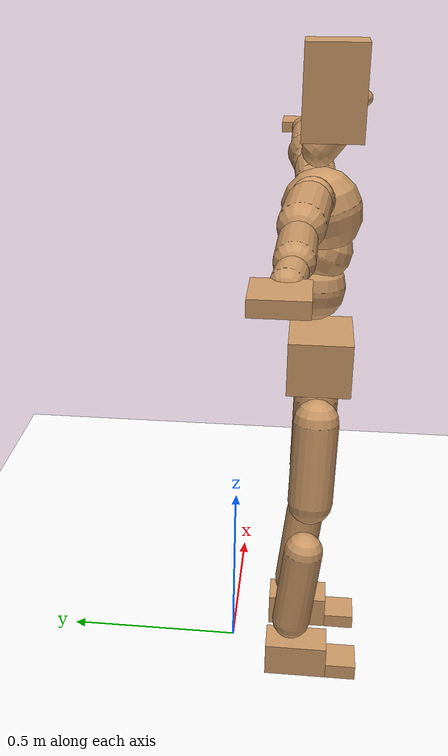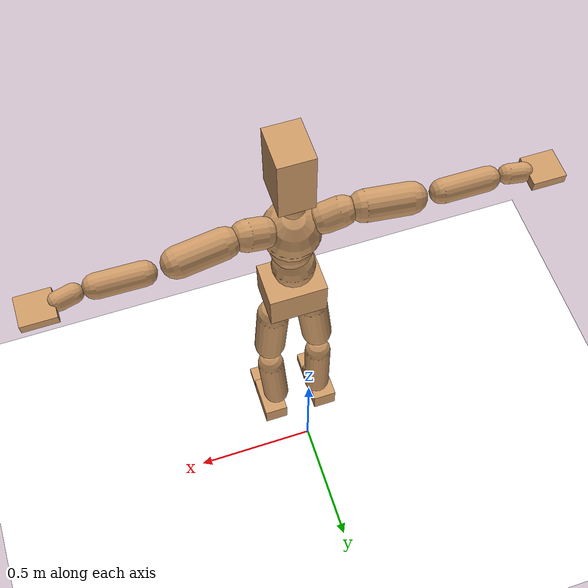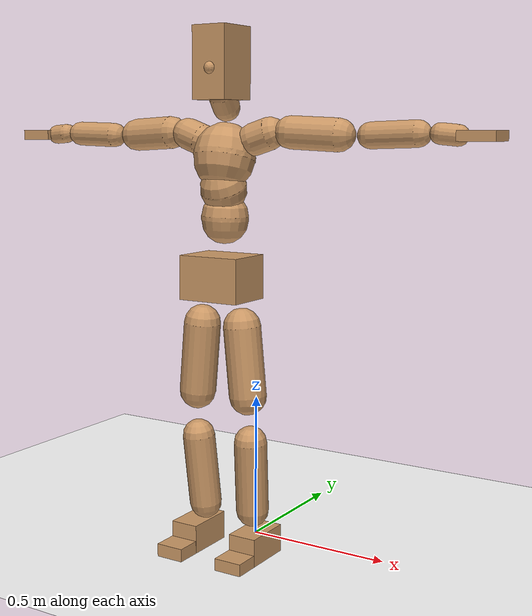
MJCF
<mujoco model="humanoid">
  <option integrator="implicitfast" />

  <visual>
    <global offwidth="1280" offheight="960" />
    <headlight active="1" ambient="0.34 0.34 0.34" diffuse="0.5 0.5 0.5" />
  </visual>

  <default>
    <joint damping="2" stiffness="2" armature="0.01" limited="true" solimplimit="0 .99 .01" />
    <geom condim="1" friction="0.7 0.005 0.0001" solimp=".99 .99 .003" solref="0.015 1" margin="0.001" rgba="0.8 0.6 .4 1" />
    <default class="smplcontact">
      <geom condim="3" friction="1. 0.005 0.0001" solref="0.015 1" solimp="0.98 0.98 0.001" priority="1" />
    </default>
    <default class="stiff_medium">
      <joint stiffness="10" />
    </default>
    <default class="stiff_medium_higher">
      <joint stiffness="50" />
    </default>
    <default class="stiff_high">
      <joint stiffness="100" />
    </default>
  </default>

  <asset>
    <texture type="skybox" builtin="gradient" rgb1="0.99 0.99 0.99" rgb2="0.608 0.828 0.892" width="100" />
    <texture builtin="flat" height="1278" mark="cross" markrgb="1 1 1" name="texgeom" random="0.01" rgb1="0.8 0.6 0.4" rgb2="0.8 0.6 0.4" type="cube" width="127" />
    <texture name="texplane" type="2d" builtin="checker" markrgb="1 1 1" rgb1="0.756 0.772 0.76" rgb2="0.6 0.6 0.6" width="100" height="100" />
    <material name="MatPlane" reflectance="0.5" texture="texplane" texrepeat="1 1" texuniform="true" />
    <material name="geom" texture="texgeom" texuniform="true" />
  </asset>

  <worldbody>
    <light name="tracking_light" pos="0 0 7" dir="0 0 -1" directional="true" cutoff="100" exponent="1" diffuse="1 1 1" specular="0.1 0.1 0.1" mode="trackcom" />
    <camera name="back" pos="0 3 2.4" xyaxes="-1 0 0 0 -1 2" mode="trackcom" />
    <camera name="side" pos="-3 0 2.4" xyaxes="0 -1 0 1 0 2" mode="trackcom" />
    <camera name="front_side" pos="-2.8 -2.8 0.8" xyaxes="0.5 -0.5 0 0.1 0.1 1" mode="trackcom" />
    <geom condim="3" name="floor" pos="0 0 0" rgba="1 1 1 1" size="100 100 .2" type="plane" material="MatPlane" />
    <body name="Pelvis" pos="-0.0018 -0.2233 0.965657" euler="90 0 0">
      <site name="Pelvis" size="0.01" />
      <freejoint name="Pelvis" />
      <geom type="box" pos="-0.0000 -0.0121 -0.0055" size="0.10891 0.0735574 0.0845604" quat="1.0000 0.0000 0.0000 0.0000" density="3165.830099" name="Pelvis" />
      <body name="L_Hip" pos="0.0716684 -0.0942517 -0.00701216">
        <joint name="L_Hip_x" type="hinge" pos="0 0 0" axis="1 0 0" stiffness="10.993550918367347" range="-160.0 22.92" class="stiff_medium" damping="16.731264559201378" armature="0.011317148706491573"/>
        <joint name="L_Hip_y" type="hinge" pos="0 0 0" axis="0 1 0" stiffness="10.989952142857145" range="-70.0 70.0" class="stiff_medium" damping="11.076255150268974" armature="0.011163235886663743"/>
        <joint name="L_Hip_z" type="hinge" pos="0 0 0" axis="0 0 1" stiffness="10.99057081632653" range="-28.65 90.0" class="stiff_medium" damping="11.152776792879617" armature="0.011317376710499935"/>
        <geom type="capsule" density="2040.816327" fromto="0.00711528 -0.07734 -0.00092808 0.0282549 -0.309566 -0.00371232" size="0.0626562" name="L_Hip" />
        <body name="L_Knee" pos="0.0353702 -0.386906 -0.0046404">
          <joint name="L_Knee_x" type="hinge" pos="0 0 0" axis="1 0 0" range="-5.16 171.89" damping="8.90667826329039" armature="0.011290255274647106" stiffness="2.1957242040816327"/>
          <joint name="L_Knee_y" type="hinge" pos="0 0 0" axis="0 1 0" range="-4.58 6.88" damping="8.849587285307368" armature="0.01113682203229276" stiffness="2.197529816326531"/>
          <joint name="L_Knee_z" type="hinge" pos="0 0 0" axis="0 0 1" range="-6.88 4.58" damping="8.904685345004342" armature="0.011291358815530995" stiffness="2.1945272040816324"/>
          <geom type="capsule" density="1234.567901" fromto="-0.00278424 -0.0820835 -0.00897144 -0.0112401 -0.328334 -0.036092" size="0.0551171" name="L_Knee" />
          <body name="L_Ankle" pos="-0.0140243 -0.410418 -0.0450634">
            <joint name="L_Ankle_x" type="hinge" pos="0 0 0" axis="1 0 0" range="-45.84 45.84" class="stiff_medium" damping="6.616797115848325" armature="0.01115280257513816" stiffness="10.90458448979592"/>
            <joint name="L_Ankle_y" type="hinge" pos="0 0 0" axis="0 1 0" range="-74.48 22.92" class="stiff_medium" damping="3.3074226818225547" armature="0.011146223241716394" stiffness="10.90458530612245"/>
            <joint name="L_Ankle_z" type="hinge" pos="0 0 0" axis="0 0 1" range="-4.58 4.58" class="stiff_medium" damping="6.602056219394647" armature="0.011103163332494908" stiffness="10.90458663265306"/>
            <geom type="box" pos="0.024027 -0.0246457 0.024955" size="0.049208 0.0472723 0.086598" quat="1.0000 0.0000 0.0000 0.0000" density="449.071558" name="L_Ankle" class="smplcontact" />
            <body name="L_Toe" pos="0.0272237 -0.057541 0.123022">
              <joint name="L_Toe_x" type="hinge" pos="0 0 0" axis="1 0 0" range="-91.67 22.92" armature="0.011078207038047102" damping="2.1982116054132375" stiffness="2.1809189183673467"/>
              <joint name="L_Toe_y" type="hinge" pos="0 0 0" axis="0 1 0" range="-4.58 4.58" armature="0.01104801091343472" damping="2.1952136722893223" stiffness="2.180918857142857"/>
              <joint name="L_Toe_z" type="hinge" pos="0 0 0" axis="0 0 1" range="-4.58 4.58" armature="0.010986963041743661" damping="2.1891403084332692" stiffness="2.1809190000000003"/>
              <geom type="box" pos="-0.0030936 0.0056716 0.0255738" size="0.0486986 0.020376 0.0505325" quat="1.0000 0.0000 0.0000 0.0000" density="423.206892" name="L_Toe" class="smplcontact" />
            </body>
          </body>
        </body>
      </body>
      <body name="R_Hip" pos="-0.0698122 -0.0933236 -0.00443416">
        <joint name="R_Hip_x" type="hinge" pos="0 0 0" axis="1 0 0" stiffness="10.993550918367347" range="-160.0 22.92" class="stiff_medium" damping="16.731264559201378" armature="0.011317148706491573"/>
        <joint name="R_Hip_y" type="hinge" pos="0 0 0" axis="0 1 0" stiffness="10.989952142857145" range="-70.0 70.0" class="stiff_medium" damping="11.076255150268974" armature="0.011163235886663743"/>
        <joint name="R_Hip_z" type="hinge" pos="0 0 0" axis="0 0 1" stiffness="10.99057081632653" range="-90.0 28.65" class="stiff_medium" damping="11.152776792879617" armature="0.011317376710499935"/>
        <geom type="capsule" density="2040.816327" fromto="-0.00794024 -0.0788868 -0.00185616 -0.0315547 -0.31565 -0.00732152" size="0.0617393" name="R_Hip" />
        <body name="R_Knee" pos="-0.039495 -0.394537 -0.00917768">
          <joint name="R_Knee_x" type="hinge" pos="0 0 0" axis="1 0 0" range="-5.16 171.89" damping="8.90667826329039" armature="0.011290255274647106" stiffness="2.1957242040816327"/>
          <joint name="R_Knee_y" type="hinge" pos="0 0 0" axis="0 1 0" range="-6.88 4.58" damping="8.849587285307368" armature="0.01113682203229276" stiffness="2.197529816326531"/>
          <joint name="R_Knee_z" type="hinge" pos="0 0 0" axis="0 0 1" range="-4.58 6.88" damping="8.904685345004342" armature="0.011291358815530995" stiffness="2.1945272040816324"/>
          <geom type="capsule" density="1234.567901" fromto="0.00329984 -0.0821866 -0.0087652 0.0129931 -0.328643 -0.0348546" size="0.0551171" name="R_Knee" />
          <body name="R_Ankle" pos="0.016293 -0.41083 -0.0436198">
            <joint name="R_Ankle_x" type="hinge" pos="0 0 0" axis="1 0 0" range="-45.84 45.84" class="stiff_medium" damping="6.616797115848325" armature="0.01115280257513816" stiffness="10.90458448979592"/>
            <joint name="R_Ankle_y" type="hinge" pos="0 0 0" axis="0 1 0" range="-22.92 74.48" class="stiff_medium" damping="3.3074226818225547" armature="0.011146223241716394" stiffness="10.90458530612245"/>
            <joint name="R_Ankle_z" type="hinge" pos="0 0 0" axis="0 0 1" range="-4.58 4.58" class="stiff_medium" damping="6.602056219394647" armature="0.011103163332494908" stiffness="10.90458663265306"/>
            <geom type="box" pos="-0.0218614 -0.0179429 0.0263987" size="0.049208 0.0486986 0.0881262" quat="1.0000 0.0000 0.0000 0.0000" density="434.700981" name="R_Ankle" class="smplcontact" />
            <body name="R_Toe" pos="-0.0261925 -0.0496007 0.127147">
              <joint name="R_Toe_x" type="hinge" pos="0 0 0" axis="1 0 0" range="-91.67 22.92" armature="0.011078207038047102" damping="2.1982116054132375" stiffness="2.1809189183673467"/>
              <joint name="R_Toe_y" type="hinge" pos="0 0 0" axis="0 1 0" range="-4.58 4.58" armature="0.01104801091343472" damping="2.1952136722893223" stiffness="2.180918857142857"/>
              <joint name="R_Toe_z" type="hinge" pos="0 0 0" axis="0 0 1" range="-4.58 4.58" armature="0.010986963041743661" damping="2.1891403084332692" stiffness="2.1809190000000003"/>
              <geom type="box" pos="0.00433104 0.0046404 0.0234082" size="0.0488005 0.0220061 0.0502268" quat="1.0000 0.0000 0.0000 0.0000" density="407.384095" name="R_Toe" class="smplcontact" />
            </body>
          </body>
        </body>
      </body>
      <body name="Torso" pos="-0.0025625 0.111725 -0.0273675">
        <joint name="Torso_x" type="hinge" pos="0 0 0" axis="1 0 0" range="-25.78 57.3" class="stiff_medium" damping="16.278215827060983" armature="0.010943125417596108" stiffness="10.761918775510203"/>
        <joint name="Torso_y" type="hinge" pos="0 0 0" axis="0 1 0" range="-57.3 57.3" class="stiff_high" damping="22.02121015947141" armature="0.011300827383838356" stiffness="107.2783612244898"/>
        <joint name="Torso_z" type="hinge" pos="0 0 0" axis="0 0 1" range="-34.38 34.38" class="stiff_high" damping="21.818539008926294" armature="0.011066688010096793" stiffness="107.54090204081632"/>
        <geom type="capsule" density="2040.816327" fromto="0.0025625 0.06232 0.0005125 0.003075 0.0761575 0.000615" size="0.0783457" name="Torso" />
        <body name="Spine" pos="0.0056375 0.13858 0.0011275">
          <joint name="Spine_x" type="hinge" pos="0 0 0" axis="1 0 0" stiffness="10.731124489795917" range="-25.78 57.3" class="stiff_medium" damping="16.183668144404077" armature="0.01084741304944829"/>
          <joint name="Spine_y" type="hinge" pos="0 0 0" axis="0 1 0" stiffness="10.724918571428573" range="-57.3 57.3" class="stiff_high" damping="8.808162633990195" armature="0.011303076637323198"/>
          <joint name="Spine_z" type="hinge" pos="0 0 0" axis="0 0 1" stiffness="21.42405020408163" range="-34.38 34.38" class="stiff_high" damping="13.084975661917804" armature="0.01109971338298697"/>
          <geom type="capsule" density="2040.816327" fromto="0.0007175 0.024395 0.011685 0.00082 0.0298275 0.01435" size="0.0769194" name="Spine" />
          <body name="Chest" pos="0.0015375 0.0542225 0.026035">
            <joint name="Chest_x" type="hinge" pos="0 0 0" axis="1 0 0" stiffness="10.68732857142857" range="-25.78 57.3" class="stiff_medium" damping="16.11278688942088" armature="0.010796665503189752"/>
            <joint name="Chest_y" type="hinge" pos="0 0 0" axis="0 1 0" stiffness="10.825288979591836" range="-57.3 57.3" class="stiff_high" damping="8.850388460715017" armature="0.011305901402093407"/>
            <joint name="Chest_z" type="hinge" pos="0 0 0" axis="0 0 1" stiffness="21.361041224489796" range="-34.38 34.38" class="stiff_high" damping="13.079229390211289" armature="0.011122678876255423"/>
            <geom type="capsule" density="2040.816327" fromto="-0.0009225 0.069905 -0.0177325 -0.001025 0.0853825 -0.02173" size="0.102084" name="Chest" />
            <body name="Neck" pos="-0.00287 0.219247 -0.0439725">
              <joint name="Neck_x" type="hinge" pos="0 0 0" axis="1 0 0" range="-28.65 57.3" class="stiff_medium_higher" damping="10.315289110801874" armature="0.010330741129599164" stiffness="51.49930102040816"/>
              <joint name="Neck_y" type="hinge" pos="0 0 0" axis="0 1 0" range="-40.11 40.11" class="stiff_medium_higher" damping="10.324660076514744" armature="0.010358685591224338" stiffness="51.45373163265307"/>
              <joint name="Neck_z" type="hinge" pos="0 0 0" axis="0 0 1" range="-40.11 40.11" class="stiff_medium_higher" damping="10.300538698277425" armature="0.010328003493675061" stiffness="51.36573469387756"/>
              <geom type="capsule" density="1000" fromto="0.001025 0.013325 0.0105575 0.0042025 0.0533 0.0421275" size="0.0444197" name="Neck" />
              <body name="Head" pos="0.00523276 0.0654095 0.0516232">
                <joint name="Head_x" type="hinge" pos="0 0 0" axis="1 0 0" range="-28.65 57.3" class="stiff_medium_higher" damping="2.057329357817433" armature="0.010318997448358899" stiffness="51.27198775510203"/>
                <joint name="Head_y" type="hinge" pos="0 0 0" axis="0 1 0" range="-40.11 40.11" class="stiff_medium_higher" damping="2.0573298220906837" armature="0.010318999641284918" stiffness="51.272000000000006"/>
                <joint name="Head_z" type="hinge" pos="0 0 0" axis="0 0 1" range="-40.11 40.11" class="stiff_medium_higher" damping="2.057329210632063" armature="0.010318997820182077" stiffness="51.27197857142857"/>
                <geom type="box" pos="-0.00422646 0.0881519 -0.0116731" size="0.0609818 0.116127 0.0764788" quat="1.0000 0.0000 0.0000 0.0000" density="1018.069894" name="Head" />
                <geom type="capsule" name="nose" size="0.020126 0.010063" pos="0 0.070441 0.050315" quat="1 0 0 0" mass="0" contype="0" conaffinity="0" />
              </body>
            </body>
            <body name="L_Thorax" pos="0.0812586 0.125497 -0.0351639">
              <joint name="L_Thorax_x" type="hinge" pos="0 0 0" axis="1 0 0" range="-10.89 4.58" class="stiff_medium_higher" damping="22.188855806039314" armature="0.011204311941050583" stiffness="54.92810765306122"/>
              <joint name="L_Thorax_y" type="hinge" pos="0 0 0" axis="0 1 0" range="-28.65 17.19" class="stiff_medium_higher" damping="22.305669663419835" armature="0.011319198777422441" stiffness="54.94458010204082"/>
              <joint name="L_Thorax_z" type="hinge" pos="0 0 0" axis="0 0 1" range="-31.51 40.11" class="stiff_medium_higher" damping="22.305709031392187" armature="0.011319302638772793" stiffness="54.944269897959174"/>
              <geom type="capsule" density="1000" fromto="0.0187678 0.00629032 -0.00185616 0.0750714 0.0251613 -0.00732152" size="0.0530795" name="L_Thorax" />
              <body name="L_Shoulder" pos="0.0938392 0.0314516 -0.00917768">
                <joint name="L_Shoulder_x" type="hinge" pos="0 0 0" axis="1 0 0" range="-97.4 97.4" class="stiff_medium" damping="6.642757942537054" armature="0.011158913101374108" stiffness="10.984301836734694"/>
                <joint name="L_Shoulder_y" type="hinge" pos="0 0 0" axis="0 1 0" range="-108.86 80.21" class="stiff_medium" damping="6.690010858062949" armature="0.011314976806793926" stiffness="10.987464285714289"/>
                <joint name="L_Shoulder_z" type="hinge" pos="0 0 0" axis="0 0 1" range="-97.4 85.94" class="stiff_medium" damping="6.690073962291698" armature="0.01131511008837033" stiffness="10.987542142857142"/>
                <geom type="capsule" density="1000" fromto="0.0535193 -0.00268112 -0.0056716 0.21418 -0.0105182 -0.0226864" size="0.052672" name="L_Shoulder" />
                <body name="L_Elbow" pos="0.2677 -0.0131994 -0.028358">
                  <joint name="L_Elbow_x" type="hinge" pos="0 0 0" axis="1 0 0" range="-17.19 4.58" damping="5.515069369245004" armature="0.01108701022308291" stiffness="2.194711795918367"/>
                  <joint name="L_Elbow_y" type="hinge" pos="0 0 0" axis="0 1 0" range="-180.0 17.19" damping="5.566430002032" armature="0.011294444478738038" stiffness="2.194717448979592"/>
                  <joint name="L_Elbow_z" type="hinge" pos="0 0 0" axis="0 0 1" range="-100.84 4.58" damping="5.566511480786791" armature="0.011295143679978463" stiffness="2.194645836734694"/>
                  <geom type="capsule" density="1000" fromto="0.0513538 0.00185616 -0.00020624 0.205621 0.00742464 -0.00092808" size="0.0412614" name="L_Elbow" />
                  <body name="L_Wrist" pos="0.256975 0.0092808 -0.00123744">
                    <joint name="L_Wrist_x" type="hinge" pos="0 0 0" axis="1 0 0" range="-180.0 22.92" armature="0.011067318856878455" damping="2.1995450215581736" stiffness="2.1857137959183675"/>
                    <joint name="L_Wrist_y" type="hinge" pos="0 0 0" axis="0 1 0" range="-17.19 17.19" armature="0.01122589251960191" damping="2.215609302757899" stiffness="2.186429530612245"/>
                    <joint name="L_Wrist_z" type="hinge" pos="0 0 0" axis="0 0 1" range="-22.92 22.92" armature="0.01123470537279724" damping="2.2163609858961157" stiffness="2.186197081632653"/>
                    <geom type="capsule" density="1000" fromto="0.0173242 -0.00164992 -0.0030936 0.0692966 -0.0067028 -0.0123744" size="0.0323978" name="L_Wrist" class="smplcontact" />
                    <body name="L_Hand" pos="0.0866208 -0.00845584 -0.0153649">
                      <joint name="L_Hand_x" type="hinge" pos="0 0 0" axis="1 0 0" range="-17.19 17.19" armature="0.010987694677782324" damping="2.1892110450504445" stiffness="2.180914714285714"/>
                      <joint name="L_Hand_y" type="hinge" pos="0 0 0" axis="0 1 0" range="-51.57 51.57" armature="0.011117616171758193" damping="2.2021160880848343" stiffness="2.1809150408163265"/>
                      <joint name="L_Hand_z" type="hinge" pos="0 0 0" axis="0 0 1" range="-91.67 91.67" armature="0.011152246477934015" damping="2.2055430908247273" stiffness="2.1809149999999997"/>
                      <geom type="box" pos="0.0508382 0.0010312 -0.00598096" size="0.0595998 0.016097 0.0548114" quat="1.0000 0.0000 0.0000 0.0000" density="400.552564" name="L_Hand" class="smplcontact" />
                    </body>
                  </body>
                </body>
              </body>
            </body>
            <body name="R_Thorax" pos="-0.0843522 0.122507 -0.0398043">
              <joint name="R_Thorax_x" type="hinge" pos="0 0 0" axis="1 0 0" range="-10.89 4.58" class="stiff_medium_higher" damping="22.188855806039314" armature="0.011204311941050583" stiffness="54.92810765306122"/>
              <joint name="R_Thorax_y" type="hinge" pos="0 0 0" axis="0 1 0" range="-17.19 28.65" class="stiff_medium_higher" damping="22.305669663419835" armature="0.011319198777422441" stiffness="54.94458010204082"/>
              <joint name="R_Thorax_z" type="hinge" pos="0 0 0" axis="0 0 1" range="-40.11 31.51" class="stiff_medium_higher" damping="22.305709031392187" armature="0.011319302638772793" stiffness="54.944269897959174"/>
              <geom type="capsule" density="1000" fromto="-0.019799 0.0067028 -0.00185616 -0.0791962 0.0268112 -0.00752776" size="0.0520607" name="R_Thorax" />
              <body name="R_Shoulder" pos="-0.0989952 0.0336171 -0.00938392">
                <joint name="R_Shoulder_x" type="hinge" pos="0 0 0" axis="1 0 0" range="-97.4 97.4" class="stiff_medium" damping="6.642757942537054" armature="0.011158913101374108" stiffness="10.984301836734694"/>
                <joint name="R_Shoulder_y" type="hinge" pos="0 0 0" axis="0 1 0" range="-80.21 108.86" class="stiff_medium" damping="6.690010858062949" armature="0.011314976806793926" stiffness="10.987464285714289"/>
                <joint name="R_Shoulder_z" type="hinge" pos="0 0 0" axis="0 0 1" range="-85.94 97.4" class="stiff_medium" damping="6.690073962291698" armature="0.01131511008837033" stiffness="10.987542142857142"/>
                <geom type="capsule" density="1000" fromto="-0.0522818 -0.00278424 -0.00443416 -0.209334 -0.0110338 -0.0176335" size="0.0540983" name="R_Shoulder" />
                <body name="R_Elbow" pos="-0.261615 -0.013715 -0.0220677">
                  <joint name="R_Elbow_x" type="hinge" pos="0 0 0" axis="1 0 0" range="-17.19 4.58" damping="5.515069369245004" armature="0.01108701022308291" stiffness="2.194711795918367"/>
                  <joint name="R_Elbow_y" type="hinge" pos="0 0 0" axis="0 1 0" range="-17.19 180.0" damping="5.566430002032" armature="0.011294444478738038" stiffness="2.194717448979592"/>
                  <joint name="R_Elbow_z" type="hinge" pos="0 0 0" axis="0 0 1" range="-4.58 100.84" damping="5.566511480786791" armature="0.011295143679978463" stiffness="2.194645836734694"/>
                  <geom type="capsule" density="1000" fromto="-0.0526943 0.00164992 -0.00113432 -0.210571 0.00639344 -0.00453728" size="0.041567" name="R_Elbow" />
                  <body name="R_Wrist" pos="-0.263265 0.00804336 -0.00577472">
                    <joint name="R_Wrist_x" type="hinge" pos="0 0 0" axis="1 0 0" range="-180.0 22.92" armature="0.011067318856878455" damping="2.1995450215581736" stiffness="2.1857137959183675"/>
                    <joint name="R_Wrist_y" type="hinge" pos="0 0 0" axis="0 1 0" range="-17.19 17.19" armature="0.01122589251960191" damping="2.215609302757899" stiffness="2.186429530612245"/>
                    <joint name="R_Wrist_z" type="hinge" pos="0 0 0" axis="0 0 1" range="-22.92 22.92" armature="0.01123470537279724" damping="2.2163609858961157" stiffness="2.186197081632653"/>
                    <geom type="capsule" density="1000" fromto="-0.0174273 -0.00123744 -0.00216552 -0.0698122 -0.00505288 -0.00855896" size="0.0332129" name="R_Wrist" class="smplcontact" />
                    <body name="R_Hand" pos="-0.0872395 -0.00629032 -0.0106214">
                      <joint name="R_Hand_x" type="hinge" pos="0 0 0" axis="1 0 0" range="-17.19 17.19" armature="0.010987694677782324" damping="2.1892110450504445" stiffness="2.180914714285714"/>
                      <joint name="R_Hand_y" type="hinge" pos="0 0 0" axis="0 1 0" range="-51.57 51.57" armature="0.011117616171758193" damping="2.2021160880848343" stiffness="2.1809150408163265"/>
                      <joint name="R_Hand_z" type="hinge" pos="0 0 0" axis="0 0 1" range="-91.67 91.67" armature="0.011152246477934015" damping="2.2055430908247273" stiffness="2.1809149999999997"/>
                      <geom type="box" pos="-0.0476414 -0.00092808 -0.00814648" size="0.0579697 0.0167083 0.0556265" quat="1.0000 0.0000 0.0000 0.0000" density="403.679611" name="R_Hand" class="smplcontact" />
                    </body>
                  </body>
                </body>
              </body>
            </body>
          </body>
        </body>
      </body>
    </body>
  </worldbody>
  <actuator>
    <general name="L_Hip_x" joint="L_Hip_x" biastype="affine" gainprm="315.8777690031668" biasprm="-236.71837182896405 -197.88391653061225 -2.230835274560184" ctrllimited="true" ctrlrange="-1 1" forcerange="-395.7678330612245 395.7678330612245" />
    <general name="L_Hip_y" joint="L_Hip_y" biastype="affine" gainprm="241.68167040712385" biasprm="0.0 -197.8191385714286 -2.215251030053795" ctrllimited="true" ctrlrange="-1 1" forcerange="-395.6382771428572 395.6382771428572" />
    <general name="L_Hip_z" joint="L_Hip_z" biastype="affine" gainprm="204.83674619584406" biasprm="105.91432262212416 -197.83027469387756 -2.2305553585759235" ctrllimited="true" ctrlrange="-1 1" forcerange="-395.6605493877551 395.6605493877551" />
    <general name="L_Knee_x" joint="L_Knee_x" biastype="affine" gainprm="305.32586891456845" biasprm="287.52884566012983 -197.61517836734694 -2.2266695658225975" ctrllimited="true" ctrlrange="-1 1" forcerange="-395.2303567346939 395.2303567346939" />
    <general name="L_Knee_y" joint="L_Knee_y" biastype="affine" gainprm="19.77922520490072" biasprm="3.9696525280341755 -197.7776834693878 -2.212396821326842" ctrllimited="true" ctrlrange="-1 1" forcerange="-395.5553669387756 395.5553669387756" />
    <general name="L_Knee_z" joint="L_Knee_z" biastype="affine" gainprm="19.75219970410723" biasprm="-3.9642285619063378 -197.5074483673469 -2.2261713362510855" ctrllimited="true" ctrlrange="-1 1" forcerange="-395.0148967346938 395.0148967346938" />
    <general name="L_Ankle_x" joint="L_Ankle_x" biastype="affine" gainprm="78.51879170407301" biasprm="0.0 -98.14126040816326 -2.2055990386161084" ctrllimited="true" ctrlrange="-1 1" forcerange="-196.28252081632652 196.28252081632652" />
    <general name="L_Ankle_y" joint="L_Ankle_y" biastype="affine" gainprm="83.41765798966351" biasprm="-44.158259198635015 -98.14126775510205 -2.20494845454837" ctrllimited="true" ctrlrange="-1 1" forcerange="-196.2825355102041 196.2825355102041" />
    <general name="L_Ankle_z" joint="L_Ankle_z" biastype="affine" gainprm="7.845029159526976" biasprm="0.0 -98.14127969387755 -2.200685406464882" ctrllimited="true" ctrlrange="-1 1" forcerange="-196.2825593877551 196.2825593877551" />
    <general name="L_Toe_x" joint="L_Toe_x" biastype="affine" gainprm="78.51201288527258" biasprm="-47.104467107622746 -78.51308106122448 -0.879284642165295" ctrllimited="true" ctrlrange="-1 1" forcerange="-157.02616212244897 157.02616212244897" />
    <general name="L_Toe_y" joint="L_Toe_y" biastype="affine" gainprm="6.276027732262709" biasprm="0.0 -78.51307885714284 -0.8780854689157289" ctrllimited="true" ctrlrange="-1 1" forcerange="-157.0261577142857 157.0261577142857" />
    <general name="L_Toe_z" joint="L_Toe_z" biastype="affine" gainprm="6.2760281433625495" biasprm="0.0 -78.513084 -0.8756561233733078" ctrllimited="true" ctrlrange="-1 1" forcerange="-157.026168 157.026168" />
    <general name="R_Hip_x" joint="R_Hip_x" biastype="affine" gainprm="315.8777690031668" biasprm="-236.71837182896405 -197.88391653061225 -2.230835274560184" ctrllimited="true" ctrlrange="-1 1" forcerange="-395.7678330612245 395.7678330612245" />
    <general name="R_Hip_y" joint="R_Hip_y" biastype="affine" gainprm="241.68167040712385" biasprm="0.0 -197.8191385714286 -2.215251030053795" ctrllimited="true" ctrlrange="-1 1" forcerange="-395.6382771428572 395.6382771428572" />
    <general name="R_Hip_z" joint="R_Hip_z" biastype="affine" gainprm="204.83674619584406" biasprm="-105.91432262212416 -197.83027469387756 -2.2305553585759235" ctrllimited="true" ctrlrange="-1 1" forcerange="-395.6605493877551 395.6605493877551" />
    <general name="R_Knee_x" joint="R_Knee_x" biastype="affine" gainprm="305.32586891456845" biasprm="287.52884566012983 -197.61517836734694 -2.2266695658225975" ctrllimited="true" ctrlrange="-1 1" forcerange="-395.2303567346939 395.2303567346939" />
    <general name="R_Knee_y" joint="R_Knee_y" biastype="affine" gainprm="19.77922520490072" biasprm="-3.9696525280341755 -197.7776834693878 -2.212396821326842" ctrllimited="true" ctrlrange="-1 1" forcerange="-395.5553669387756 395.5553669387756" />
    <general name="R_Knee_z" joint="R_Knee_z" biastype="affine" gainprm="19.75219970410723" biasprm="3.9642285619063378 -197.5074483673469 -2.2261713362510855" ctrllimited="true" ctrlrange="-1 1" forcerange="-395.0148967346938 395.0148967346938" />
    <general name="R_Ankle_x" joint="R_Ankle_x" biastype="affine" gainprm="78.51879170407301" biasprm="0.0 -98.14126040816326 -2.2055990386161084" ctrllimited="true" ctrlrange="-1 1" forcerange="-196.28252081632652 196.28252081632652" />
    <general name="R_Ankle_y" joint="R_Ankle_y" biastype="affine" gainprm="83.41765798966351" biasprm="44.158259198635015 -98.14126775510205 -2.20494845454837" ctrllimited="true" ctrlrange="-1 1" forcerange="-196.2825355102041 196.2825355102041" />
    <general name="R_Ankle_z" joint="R_Ankle_z" biastype="affine" gainprm="7.845029159526976" biasprm="0.0 -98.14127969387755 -2.200685406464882" ctrllimited="true" ctrlrange="-1 1" forcerange="-196.2825593877551 196.2825593877551" />
    <general name="R_Toe_x" joint="R_Toe_x" biastype="affine" gainprm="78.51201288527258" biasprm="-47.104467107622746 -78.51308106122448 -0.879284642165295" ctrllimited="true" ctrlrange="-1 1" forcerange="-157.02616212244897 157.02616212244897" />
    <general name="R_Toe_y" joint="R_Toe_y" biastype="affine" gainprm="6.276027732262709" biasprm="0.0 -78.51307885714284 -0.8780854689157289" ctrllimited="true" ctrlrange="-1 1" forcerange="-157.0261577142857 157.0261577142857" />
    <general name="R_Toe_z" joint="R_Toe_z" biastype="affine" gainprm="6.2760281433625495" biasprm="0.0 -78.513084 -0.8756561233733078" ctrllimited="true" ctrlrange="-1 1" forcerange="-157.026168 157.026168" />
    <general name="Torso_x" joint="Torso_x" biastype="affine" gainprm="187.25991047879643" biasprm="71.04516584366468 -258.2860506122449 -4.340857553882929" ctrllimited="true" ctrlrange="-1 1" forcerange="-387.42907591836735 387.42907591836735" />
    <general name="Torso_y" joint="Torso_y" biastype="affine" gainprm="257.48703239517505" biasprm="0.0 -257.4680669387755 -4.404242031894282" ctrllimited="true" ctrlrange="-1 1" forcerange="-386.20210040816323 386.20210040816323" />
    <general name="Torso_z" joint="Torso_z" biastype="affine" gainprm="154.8703060609512" biasprm="0.0 -258.0981648979592 -4.363707801785258" ctrllimited="true" ctrlrange="-1 1" forcerange="-387.14724734693874 387.14724734693874" />
    <general name="Spine_x" joint="Spine_x" biastype="affine" gainprm="186.72408268577888" biasprm="70.84187633913997 -257.546987755102 -4.315644838507754" ctrllimited="true" ctrlrange="-1 1" forcerange="-386.32048163265307 386.32048163265307" />
    <general name="Spine_y" joint="Spine_y" biastype="affine" gainprm="257.4170060128244" biasprm="0.0 -257.39804571428573 -4.404081316995097" ctrllimited="true" ctrlrange="-1 1" forcerange="-386.0970685714286 386.0970685714286" />
    <general name="Spine_z" joint="Spine_z" biastype="affine" gainprm="154.26452397209783" biasprm="0.0 -257.0886024489796 -4.361658553972601" ctrllimited="true" ctrlrange="-1 1" forcerange="-385.6329036734694 385.6329036734694" />
    <general name="Chest_x" joint="Chest_x" biastype="affine" gainprm="185.9620234355763" biasprm="70.55275612288594 -256.4958857142857 -4.296743170512235" ctrllimited="true" ctrlrange="-1 1" forcerange="-384.7438285714285 384.7438285714285" />
    <general name="Chest_y" joint="Chest_y" biastype="affine" gainprm="259.82607325092005" biasprm="0.0 -259.8069355102041 -4.4251942303575085" ctrllimited="true" ctrlrange="-1 1" forcerange="-389.7104032653061 389.7104032653061" />
    <general name="Chest_z" joint="Chest_z" biastype="affine" gainprm="153.81082590146642" biasprm="0.0 -256.33249469387755 -4.35974313007043" ctrllimited="true" ctrlrange="-1 1" forcerange="-384.4987420408163 384.4987420408163" />
    <general name="Neck_x" joint="Neck_x" biastype="affine" gainprm="27.81167104654939" biasprm="9.270557015516463 -37.079496734693876 -0.8252231288641501" ctrllimited="true" ctrlrange="-1 1" forcerange="-74.15899346938775 74.15899346938775" />
    <general name="Neck_y" joint="Neck_y" biastype="affine" gainprm="25.934590980238426" biasprm="0.0 -37.04668677551021 -0.8259728061211796" ctrllimited="true" ctrlrange="-1 1" forcerange="-74.09337355102042 74.09337355102042" />
    <general name="Neck_z" joint="Neck_z" biastype="affine" gainprm="25.89023725617913" biasprm="0.0 -36.983328979591846 -0.8240430958621939" ctrllimited="true" ctrlrange="-1 1" forcerange="-73.96665795918369 73.96665795918369" />
    <general name="Head_x" joint="Head_x" biastype="affine" gainprm="18.459275227606504" biasprm="6.153091742535501 -24.610554122448974 -0.8229317431269734" ctrllimited="true" ctrlrange="-1 1" forcerange="-49.22110824489795 49.22110824489795" />
    <general name="Head_y" joint="Head_y" biastype="affine" gainprm="17.228660993688187" biasprm="0.0 -24.610560000000003 -0.8229319288362735" ctrllimited="true" ctrlrange="-1 1" forcerange="-49.221120000000006 49.221120000000006" />
    <general name="Head_z" joint="Head_z" biastype="affine" gainprm="17.22865379315782" biasprm="0.0 -24.61054971428571 -0.8229316842528253" ctrllimited="true" ctrlrange="-1 1" forcerange="-49.22109942857142 49.22109942857142" />
    <general name="L_Thorax_x" joint="L_Thorax_x" biastype="affine" gainprm="17.796867398210438" biasprm="-7.259097174059982 -131.82745836734694 -1.7751084644831452" ctrllimited="true" ctrlrange="-1 1" forcerange="-263.65491673469387 263.65491673469387" />
    <general name="L_Thorax_y" joint="L_Thorax_y" biastype="affine" gainprm="52.750682300481834" biasprm="-13.187670575120459 -131.86699224489797 -1.7844535730735869" ctrllimited="true" ctrlrange="-1 1" forcerange="-263.73398448979594 263.73398448979594" />
    <general name="L_Thorax_z" joint="L_Thorax_z" biastype="affine" gainprm="82.41672200361636" biasprm="9.89645084098158 -131.86624775510202 -1.784456722511375" ctrllimited="true" ctrlrange="-1 1" forcerange="-263.73249551020405 263.73249551020405" />
    <general name="L_Shoulder_x" joint="L_Shoulder_x" biastype="affine" gainprm="89.62930321137607" biasprm="0.0 -52.72464881632653 -1.7714021180098811" ctrllimited="true" ctrlrange="-1 1" forcerange="-105.44929763265306 105.44929763265306" />
    <general name="L_Shoulder_y" joint="L_Shoulder_y" biastype="affine" gainprm="87.01792237352498" biasprm="-13.185928365163647 -52.73982857142858 -1.784002895483453" ctrllimited="true" ctrlrange="-1 1" forcerange="-105.47965714285716 105.47965714285716" />
    <general name="L_Shoulder_z" joint="L_Shoulder_z" biastype="affine" gainprm="84.38133462216923" biasprm="-5.274408720246873 -52.74020228571429 -1.7840197232777861" ctrllimited="true" ctrlrange="-1 1" forcerange="-105.48040457142858 105.48040457142858" />
    <general name="L_Elbow_x" joint="L_Elbow_x" biastype="affine" gainprm="15.010176520108315" biasprm="-8.69445686350785 -79.00962465306121 -0.8824110990792007" ctrllimited="true" ctrlrange="-1 1" forcerange="-158.01924930612242 158.01924930612242" />
    <general name="L_Elbow_y" joint="L_Elbow_y" biastype="affine" gainprm="135.96069508014043" biasprm="-112.2560006389658 -79.00982816326531 -0.89062880032512" ctrllimited="true" ctrlrange="-1 1" forcerange="-158.01965632653062 158.01965632653062" />
    <general name="L_Elbow_z" joint="L_Elbow_z" biastype="affine" gainprm="72.68375069412247" biasprm="-66.36822084819039 -79.00725012244898 -0.8906418369258866" ctrllimited="true" ctrlrange="-1 1" forcerange="-158.01450024489796 158.01450024489796" />
    <general name="L_Wrist_x" joint="L_Wrist_x" biastype="affine" gainprm="23.222916970689887" biasprm="-17.976817453952137 -13.114282775510205 -0.8798180086232694" ctrllimited="true" ctrlrange="-1 1" forcerange="-26.22856555102041 26.22856555102041" />
    <general name="L_Wrist_y" joint="L_Wrist_y" biastype="affine" gainprm="3.93586305490192" biasprm="0.0 -13.118577183673471 -0.8862437211031596" ctrllimited="true" ctrlrange="-1 1" forcerange="-26.237154367346943 26.237154367346943" />
    <general name="L_Wrist_z" joint="L_Wrist_z" biastype="affine" gainprm="5.247259487890834" biasprm="0.0 -13.117182489795919 -0.8865443943584463" ctrllimited="true" ctrlrange="-1 1" forcerange="-26.234364979591838 26.234364979591838" />
    <general name="L_Hand_x" joint="L_Hand_x" biastype="affine" gainprm="3.9259356543018713" biasprm="0.0 -13.085488285714284 -0.8756844180201778" ctrllimited="true" ctrlrange="-1 1" forcerange="-26.170976571428568 26.170976571428568" />
    <general name="L_Hand_y" joint="L_Hand_y" biastype="affine" gainprm="11.777808726300803" biasprm="0.0 -13.085490244897958 -0.8808464352339338" ctrllimited="true" ctrlrange="-1 1" forcerange="-26.170980489795916 26.170980489795916" />
    <general name="L_Hand_z" joint="L_Hand_z" biastype="affine" gainprm="20.936042383821793" biasprm="0.0 -13.085489999999998 -0.882217236329891" ctrllimited="true" ctrlrange="-1 1" forcerange="-26.170979999999997 26.170979999999997" />
    <general name="R_Thorax_x" joint="R_Thorax_x" biastype="affine" gainprm="17.796867398210438" biasprm="-7.259097174059982 -131.82745836734694 -1.7751084644831452" ctrllimited="true" ctrlrange="-1 1" forcerange="-263.65491673469387 263.65491673469387" />
    <general name="R_Thorax_y" joint="R_Thorax_y" biastype="affine" gainprm="52.750682300481834" biasprm="13.18767057512045 -131.86699224489797 -1.7844535730735869" ctrllimited="true" ctrlrange="-1 1" forcerange="-263.73398448979594 263.73398448979594" />
    <general name="R_Thorax_z" joint="R_Thorax_z" biastype="affine" gainprm="82.41672200361636" biasprm="-9.89645084098158 -131.86624775510202 -1.784456722511375" ctrllimited="true" ctrlrange="-1 1" forcerange="-263.73249551020405 263.73249551020405" />
    <general name="R_Shoulder_x" joint="R_Shoulder_x" biastype="affine" gainprm="89.62930321137607" biasprm="0.0 -52.72464881632653 -1.7714021180098811" ctrllimited="true" ctrlrange="-1 1" forcerange="-105.44929763265306 105.44929763265306" />
    <general name="R_Shoulder_y" joint="R_Shoulder_y" biastype="affine" gainprm="87.01792237352498" biasprm="13.185928365163647 -52.73982857142858 -1.784002895483453" ctrllimited="true" ctrlrange="-1 1" forcerange="-105.47965714285716 105.47965714285716" />
    <general name="R_Shoulder_z" joint="R_Shoulder_z" biastype="affine" gainprm="84.38133462216923" biasprm="5.274408720246861 -52.74020228571429 -1.7840197232777861" ctrllimited="true" ctrlrange="-1 1" forcerange="-105.48040457142858 105.48040457142858" />
    <general name="R_Elbow_x" joint="R_Elbow_x" biastype="affine" gainprm="15.010176520108315" biasprm="-8.69445686350785 -79.00962465306121 -0.8824110990792007" ctrllimited="true" ctrlrange="-1 1" forcerange="-158.01924930612242 158.01924930612242" />
    <general name="R_Elbow_y" joint="R_Elbow_y" biastype="affine" gainprm="135.96069508014043" biasprm="112.2560006389658 -79.00982816326531 -0.89062880032512" ctrllimited="true" ctrlrange="-1 1" forcerange="-158.01965632653062 158.01965632653062" />
    <general name="R_Elbow_z" joint="R_Elbow_z" biastype="affine" gainprm="72.68375069412247" biasprm="66.36822084819038 -79.00725012244898 -0.8906418369258866" ctrllimited="true" ctrlrange="-1 1" forcerange="-158.01450024489796 158.01450024489796" />
    <general name="R_Wrist_x" joint="R_Wrist_x" biastype="affine" gainprm="23.222916970689887" biasprm="-17.976817453952137 -13.114282775510205 -0.8798180086232694" ctrllimited="true" ctrlrange="-1 1" forcerange="-26.22856555102041 26.22856555102041" />
    <general name="R_Wrist_y" joint="R_Wrist_y" biastype="affine" gainprm="3.93586305490192" biasprm="0.0 -13.118577183673471 -0.8862437211031596" ctrllimited="true" ctrlrange="-1 1" forcerange="-26.237154367346943 26.237154367346943" />
    <general name="R_Wrist_z" joint="R_Wrist_z" biastype="affine" gainprm="5.247259487890834" biasprm="0.0 -13.117182489795919 -0.8865443943584463" ctrllimited="true" ctrlrange="-1 1" forcerange="-26.234364979591838 26.234364979591838" />
    <general name="R_Hand_x" joint="R_Hand_x" biastype="affine" gainprm="3.9259356543018713" biasprm="0.0 -13.085488285714284 -0.8756844180201778" ctrllimited="true" ctrlrange="-1 1" forcerange="-26.170976571428568 26.170976571428568" />
    <general name="R_Hand_y" joint="R_Hand_y" biastype="affine" gainprm="11.777808726300803" biasprm="0.0 -13.085490244897958 -0.8808464352339338" ctrllimited="true" ctrlrange="-1 1" forcerange="-26.170980489795916 26.170980489795916" />
    <general name="R_Hand_z" joint="R_Hand_z" biastype="affine" gainprm="20.936042383821793" biasprm="0.0 -13.085489999999998 -0.882217236329891" ctrllimited="true" ctrlrange="-1 1" forcerange="-26.170979999999997 26.170979999999997" />
  </actuator>
  <contact>
    <exclude body1="Torso" body2="Chest" />
    <exclude body1="Head" body2="Chest" />
    <exclude body1="R_Knee" body2="R_Toe" />
    <exclude body1="R_Knee" body2="L_Ankle" />
    <exclude body1="R_Knee" body2="L_Toe" />
    <exclude body1="L_Knee" body2="L_Toe" />
    <exclude body1="L_Knee" body2="R_Ankle" />
    <exclude body1="L_Knee" body2="R_Toe" />
    <exclude body1="L_Shoulder" body2="Chest" />
    <exclude body1="R_Shoulder" body2="Chest" />
  </contact>
  <sensor>
    <framelinvel name="sensor_Pelvis_framelinvel" objtype="xbody" objname="Pelvis" />
    <framelinvel name="sensor_L_Hip_framelinvel" objtype="xbody" objname="L_Hip" />
    <framelinvel name="sensor_L_Knee_framelinvel" objtype="xbody" objname="L_Knee" />
    <framelinvel name="sensor_L_Ankle_framelinvel" objtype="xbody" objname="L_Ankle" />
    <framelinvel name="sensor_L_Toe_framelinvel" objtype="xbody" objname="L_Toe" />
    <framelinvel name="sensor_R_Hip_framelinvel" objtype="xbody" objname="R_Hip" />
    <framelinvel name="sensor_R_Knee_framelinvel" objtype="xbody" objname="R_Knee" />
    <framelinvel name="sensor_R_Ankle_framelinvel" objtype="xbody" objname="R_Ankle" />
    <framelinvel name="sensor_R_Toe_framelinvel" objtype="xbody" objname="R_Toe" />
    <framelinvel name="sensor_Torso_framelinvel" objtype="xbody" objname="Torso" />
    <framelinvel name="sensor_Spine_framelinvel" objtype="xbody" objname="Spine" />
    <framelinvel name="sensor_Chest_framelinvel" objtype="xbody" objname="Chest" />
    <framelinvel name="sensor_Neck_framelinvel" objtype="xbody" objname="Neck" />
    <framelinvel name="sensor_Head_framelinvel" objtype="xbody" objname="Head" />
    <framelinvel name="sensor_L_Thorax_framelinvel" objtype="xbody" objname="L_Thorax" />
    <framelinvel name="sensor_L_Shoulder_framelinvel" objtype="xbody" objname="L_Shoulder" />
    <framelinvel name="sensor_L_Elbow_framelinvel" objtype="xbody" objname="L_Elbow" />
    <framelinvel name="sensor_L_Wrist_framelinvel" objtype="xbody" objname="L_Wrist" />
    <framelinvel name="sensor_L_Hand_framelinvel" objtype="xbody" objname="L_Hand" />
    <framelinvel name="sensor_R_Thorax_framelinvel" objtype="xbody" objname="R_Thorax" />
    <framelinvel name="sensor_R_Shoulder_framelinvel" objtype="xbody" objname="R_Shoulder" />
    <framelinvel name="sensor_R_Elbow_framelinvel" objtype="xbody" objname="R_Elbow" />
    <framelinvel name="sensor_R_Wrist_framelinvel" objtype="xbody" objname="R_Wrist" />
    <framelinvel name="sensor_R_Hand_framelinvel" objtype="xbody" objname="R_Hand" />
    <frameangvel name="sensor_Pelvis_frameangvel" objtype="xbody" objname="Pelvis" />
    <frameangvel name="sensor_L_Hip_frameangvel" objtype="xbody" objname="L_Hip" />
    <frameangvel name="sensor_L_Knee_frameangvel" objtype="xbody" objname="L_Knee" />
    <frameangvel name="sensor_L_Ankle_frameangvel" objtype="xbody" objname="L_Ankle" />
    <frameangvel name="sensor_L_Toe_frameangvel" objtype="xbody" objname="L_Toe" />
    <frameangvel name="sensor_R_Hip_frameangvel" objtype="xbody" objname="R_Hip" />
    <frameangvel name="sensor_R_Knee_frameangvel" objtype="xbody" objname="R_Knee" />
    <frameangvel name="sensor_R_Ankle_frameangvel" objtype="xbody" objname="R_Ankle" />
    <frameangvel name="sensor_R_Toe_frameangvel" objtype="xbody" objname="R_Toe" />
    <frameangvel name="sensor_Torso_frameangvel" objtype="xbody" objname="Torso" />
    <frameangvel name="sensor_Spine_frameangvel" objtype="xbody" objname="Spine" />
    <frameangvel name="sensor_Chest_frameangvel" objtype="xbody" objname="Chest" />
    <frameangvel name="sensor_Neck_frameangvel" objtype="xbody" objname="Neck" />
    <frameangvel name="sensor_Head_frameangvel" objtype="xbody" objname="Head" />
    <frameangvel name="sensor_L_Thorax_frameangvel" objtype="xbody" objname="L_Thorax" />
    <frameangvel name="sensor_L_Shoulder_frameangvel" objtype="xbody" objname="L_Shoulder" />
    <frameangvel name="sensor_L_Elbow_frameangvel" objtype="xbody" objname="L_Elbow" />
    <frameangvel name="sensor_L_Wrist_frameangvel" objtype="xbody" objname="L_Wrist" />
    <frameangvel name="sensor_L_Hand_frameangvel" objtype="xbody" objname="L_Hand" />
    <frameangvel name="sensor_R_Thorax_frameangvel" objtype="xbody" objname="R_Thorax" />
    <frameangvel name="sensor_R_Shoulder_frameangvel" objtype="xbody" objname="R_Shoulder" />
    <frameangvel name="sensor_R_Elbow_frameangvel" objtype="xbody" objname="R_Elbow" />
    <frameangvel name="sensor_R_Wrist_frameangvel" objtype="xbody" objname="R_Wrist" />
    <frameangvel name="sensor_R_Hand_frameangvel" objtype="xbody" objname="R_Hand" />
    <subtreelinvel name="Chest_subtreelinvel" body="Chest" />
    <gyro name="Pelvis_gyro" site="Pelvis" />
  </sensor>
</mujoco>
